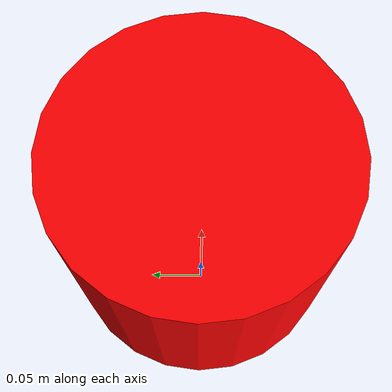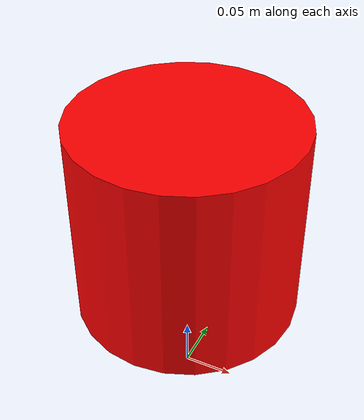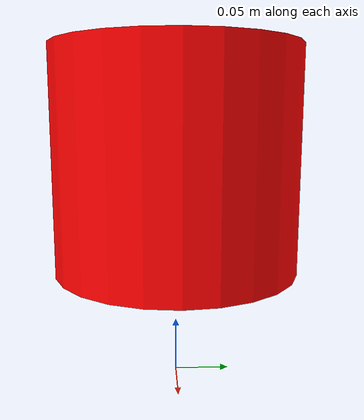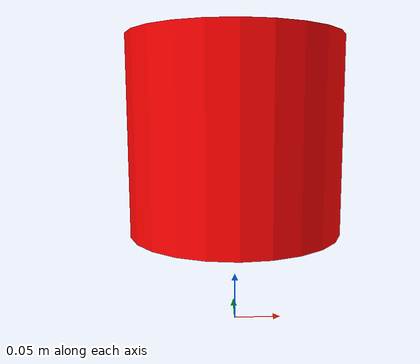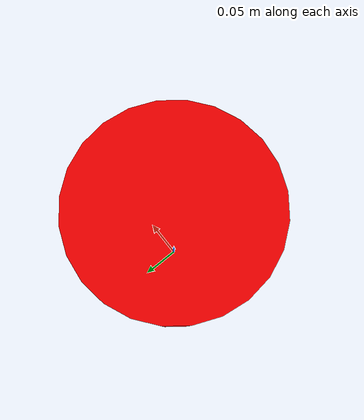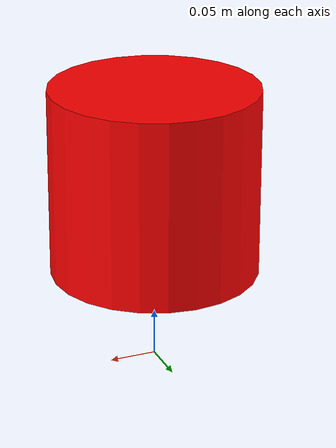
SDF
<?xml version='1.0'?>
<sdf version='1.6'>
  <model name='goal_box'>
    <pose frame=''>0 0 0 0 -0 -1.5708</pose>
    <link name='goal_box'>
      <gravity>0</gravity>
      <visual name='goal_box'>
        <pose frame=''>0 0 0.2 0 -0 0</pose>
        <geometry>
          <cylinder>
            <radius>0.11</radius>
            <length>0.2</length>
          </cylinder>
        </geometry>
        <material>
          <script>
            <uri>file://media/materials/scripts/gazebo.material</uri>
            <name>Gazebo/Grey</name>
          </script>
          <ambient>1 0 0 1</ambient>
        </material>
      </visual>
      <pose frame=''>0 0 0 0 0 0</pose>
    </link>
    <static>0</static>
  </model>
</sdf>
